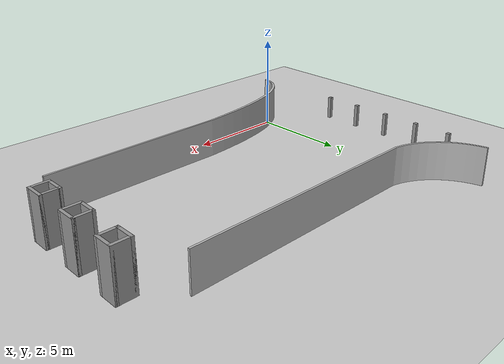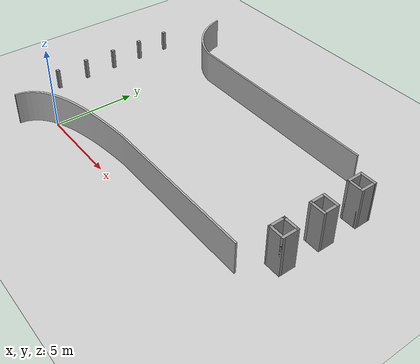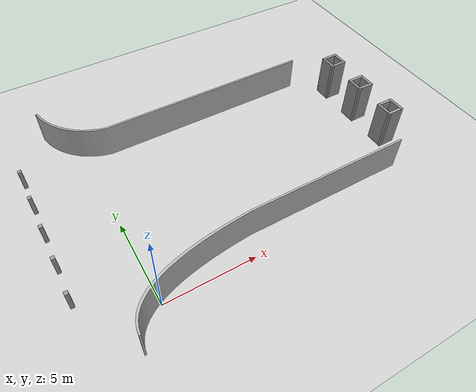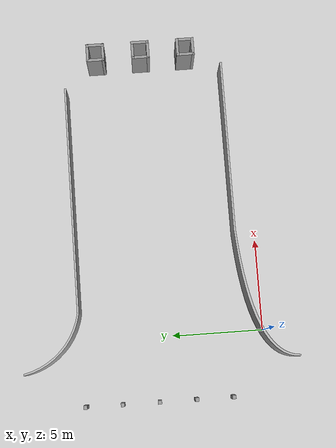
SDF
<sdf version="1.7">
 <world name="default">
  <light name="sun" type="directional">
   <pose>0 0 10 0 -0 0</pose>
   <diffuse>0.8 0.8 0.8 1</diffuse>
   <specular>0.2 0.2 0.2 1</specular>
   <attenuation>
    <range>1000</range>
    <constant>0.9</constant>
    <linear>0.01</linear>
    <quadratic>0.001</quadratic>
   </attenuation>
   <direction>-0.5 0.1 -0.9</direction>
   <spot><inner_angle>0</inner_angle><outer_angle>0</outer_angle><falloff>0</falloff></spot>
  </light>
  <model name="ground_plane">
   <static>1</static>
   <link name="link">
    <collision name="collision">
     <geometry><plane><normal>0 0 1</normal><size>100 100</size></plane></geometry>
     <surface>
      <contact><collide_bitmask>65535</collide_bitmask></contact>
      <friction><ode><mu>100</mu><mu2>50</mu2></ode></friction>
     </surface>
    </collision>
    <visual name="visual">
     <cast_shadows>0</cast_shadows>
     <geometry><plane><normal>0 0 1</normal><size>100 100</size></plane></geometry>
     <material>
      <script><uri>file://media/materials/scripts/gazebo.material</uri><name>Gazebo/Grey</name></script>
     </material>
    </visual>
   </link>
  </model>
  <gravity>0 0 -9.8</gravity>
  <magnetic_field>6e-06 2.3e-05 -4.2e-05</magnetic_field>
  <atmosphere type="adiabatic"/>
  <physics type="ode">
   <max_step_size>0.001</max_step_size>
   <real_time_factor>1</real_time_factor>
   <real_time_update_rate>1000</real_time_update_rate>
  </physics>
  <scene><ambient>0.4 0.4 0.4 1</ambient><background>0.7 0.7 0.7 1</background><shadows>1</shadows></scene>
  <spherical_coordinates>
   <surface_model>EARTH_WGS84</surface_model>
   <latitude_deg>0</latitude_deg>
   <longitude_deg>0</longitude_deg>
   <elevation>0</elevation>
   <heading_deg>0</heading_deg>
  </spherical_coordinates>
  <model name="mywall1">
   <static>1</static>
   <link name="link">
    <collision name="collision">
     <geometry><mesh><scale>0.01 0.01 0.01</scale><uri>model://mywall1/meshes/Pieza3.obj</uri></mesh></geometry>
    </collision>
    <visual name="visual">
     <geometry><mesh><scale>0.01 0.01 0.01</scale><uri>model://mywall1/meshes/Pieza3.obj</uri></mesh></geometry>
    </visual>
   </link>
   <pose>28.849 -8.5 0 1.57 -0 0</pose>
  </model>
  <model name="mywall2">
   <static>1</static>
   <link name="link">
    <collision name="collision">
     <geometry><mesh><scale>0.01 0.01 0.01</scale><uri>model://mywall2/meshes/Pieza2.obj</uri></mesh></geometry>
    </collision>
    <visual name="visual">
     <geometry><mesh><scale>0.01 0.01 0.01</scale><uri>model://mywall2/meshes/Pieza2.obj</uri></mesh></geometry>
    </visual>
   </link>
   <pose>1.5 10.0302 -0.000422 1.57 -0 0</pose>
  </model>
  <model name="wall3">
   <pose>16 4.75 0 0 -0 0</pose>
   <link name="Wall_0">
    <collision name="Wall_0_Collision">
     <geometry><box><size>1 0.15 2.5</size></box></geometry>
     <pose>0 0 1.25 0 -0 0</pose>
    </collision>
    <visual name="Wall_0_Visual">
     <pose>0 0 1.25 0 -0 0</pose>
     <geometry><box><size>1 0.15 2.5</size></box></geometry>
     <material>
      <script><uri>file://media/materials/scripts/gazebo.material</uri><name>Gazebo/Grey</name></script>
      <ambient>1 1 1 1</ambient>
     </material>
     <meta><layer>0</layer></meta>
    </visual>
    <pose>-0.1975 -1.0975 0 0 -0 0</pose>
   </link>
   <link name="Wall_1">
    <collision name="Wall_1_Collision">
     <geometry><box><size>1 0.15 2.5</size></box></geometry>
     <pose>0 0 1.25 0 -0 0</pose>
    </collision>
    <visual name="Wall_1_Visual">
     <pose>0 0 1.25 0 -0 0</pose>
     <geometry><box><size>1 0.15 2.5</size></box></geometry>
     <material>
      <script><uri>file://media/materials/scripts/gazebo.material</uri><name>Gazebo/Grey</name></script>
      <ambient>1 1 1 1</ambient>
     </material>
     <meta><layer>0</layer></meta>
    </visual>
    <pose>0.2275 -1.5225 0 0 -0 -1.5708</pose>
   </link>
   <link name="Wall_2">
    <collision name="Wall_2_Collision">
     <geometry><box><size>1 0.15 2.5</size></box></geometry>
     <pose>0 0 1.25 0 -0 0</pose>
    </collision>
    <visual name="Wall_2_Visual">
     <pose>0 0 1.25 0 -0 0</pose>
     <geometry><box><size>1 0.15 2.5</size></box></geometry>
     <material>
      <script><uri>file://media/materials/scripts/gazebo.material</uri><name>Gazebo/Grey</name></script>
      <ambient>1 1 1 1</ambient>
     </material>
     <meta><layer>0</layer></meta>
    </visual>
    <pose>-0.1975 -1.9475 0 0 -0 3.14159</pose>
   </link>
   <link name="Wall_3">
    <collision name="Wall_3_Collision">
     <geometry><box><size>1 0.15 2.5</size></box></geometry>
     <pose>0 0 1.25 0 -0 0</pose>
    </collision>
    <visual name="Wall_3_Visual">
     <pose>0 0 1.25 0 -0 0</pose>
     <geometry><box><size>1 0.15 2.5</size></box></geometry>
     <material>
      <script><uri>file://media/materials/scripts/gazebo.material</uri><name>Gazebo/Grey</name></script>
      <ambient>1 1 1 1</ambient>
     </material>
     <meta><layer>0</layer></meta>
    </visual>
    <pose>-0.6225 -1.5225 0 0 -0 1.5708</pose>
   </link>
   <static>1</static>
  </model>
  <model name="wall4">
   <pose>16 7.25 0 0 -0 0</pose>
   <link name="Wall_0">
    <collision name="Wall_0_Collision">
     <geometry><box><size>1 0.15 2.5</size></box></geometry>
     <pose>0 0 1.25 0 -0 0</pose>
    </collision>
    <visual name="Wall_0_Visual">
     <pose>0 0 1.25 0 -0 0</pose>
     <geometry><box><size>1 0.15 2.5</size></box></geometry>
     <material>
      <script><uri>file://media/materials/scripts/gazebo.material</uri><name>Gazebo/Grey</name></script>
      <ambient>1 1 1 1</ambient>
     </material>
     <meta><layer>0</layer></meta>
    </visual>
    <pose>-0.1975 -1.0975 0 0 -0 0</pose>
   </link>
   <link name="Wall_1">
    <collision name="Wall_1_Collision">
     <geometry><box><size>1 0.15 2.5</size></box></geometry>
     <pose>0 0 1.25 0 -0 0</pose>
    </collision>
    <visual name="Wall_1_Visual">
     <pose>0 0 1.25 0 -0 0</pose>
     <geometry><box><size>1 0.15 2.5</size></box></geometry>
     <material>
      <script><uri>file://media/materials/scripts/gazebo.material</uri><name>Gazebo/Grey</name></script>
      <ambient>1 1 1 1</ambient>
     </material>
     <meta><layer>0</layer></meta>
    </visual>
    <pose>0.2275 -1.5225 0 0 -0 -1.5708</pose>
   </link>
   <link name="Wall_2">
    <collision name="Wall_2_Collision">
     <geometry><box><size>1 0.15 2.5</size></box></geometry>
     <pose>0 0 1.25 0 -0 0</pose>
    </collision>
    <visual name="Wall_2_Visual">
     <pose>0 0 1.25 0 -0 0</pose>
     <geometry><box><size>1 0.15 2.5</size></box></geometry>
     <material>
      <script><uri>file://media/materials/scripts/gazebo.material</uri><name>Gazebo/Grey</name></script>
      <ambient>1 1 1 1</ambient>
     </material>
     <meta><layer>0</layer></meta>
    </visual>
    <pose>-0.1975 -1.9475 0 0 -0 3.14159</pose>
   </link>
   <link name="Wall_3">
    <collision name="Wall_3_Collision">
     <geometry><box><size>1 0.15 2.5</size></box></geometry>
     <pose>0 0 1.25 0 -0 0</pose>
    </collision>
    <visual name="Wall_3_Visual">
     <pose>0 0 1.25 0 -0 0</pose>
     <geometry><box><size>1 0.15 2.5</size></box></geometry>
     <material>
      <script><uri>file://media/materials/scripts/gazebo.material</uri><name>Gazebo/Grey</name></script>
      <ambient>1 1 1 1</ambient>
     </material>
     <meta><layer>0</layer></meta>
    </visual>
    <pose>-0.6225 -1.5225 0 0 -0 1.5708</pose>
   </link>
   <static>1</static>
  </model>
  <model name="wall5">
   <pose>16 9.75 0 0 -0 0</pose>
   <link name="Wall_0">
    <collision name="Wall_0_Collision">
     <geometry><box><size>1 0.15 2.5</size></box></geometry>
     <pose>0 0 1.25 0 -0 0</pose>
    </collision>
    <visual name="Wall_0_Visual">
     <pose>0 0 1.25 0 -0 0</pose>
     <geometry><box><size>1 0.15 2.5</size></box></geometry>
     <material>
      <script><uri>file://media/materials/scripts/gazebo.material</uri><name>Gazebo/Grey</name></script>
      <ambient>1 1 1 1</ambient>
     </material>
     <meta><layer>0</layer></meta>
    </visual>
    <pose>-0.1975 -1.0975 0 0 -0 0</pose>
   </link>
   <link name="Wall_1">
    <collision name="Wall_1_Collision">
     <geometry><box><size>1 0.15 2.5</size></box></geometry>
     <pose>0 0 1.25 0 -0 0</pose>
    </collision>
    <visual name="Wall_1_Visual">
     <pose>0 0 1.25 0 -0 0</pose>
     <geometry><box><size>1 0.15 2.5</size></box></geometry>
     <material>
      <script><uri>file://media/materials/scripts/gazebo.material</uri><name>Gazebo/Grey</name></script>
      <ambient>1 1 1 1</ambient>
     </material>
     <meta><layer>0</layer></meta>
    </visual>
    <pose>0.2275 -1.5225 0 0 -0 -1.5708</pose>
   </link>
   <link name="Wall_2">
    <collision name="Wall_2_Collision">
     <geometry><box><size>1 0.15 2.5</size></box></geometry>
     <pose>0 0 1.25 0 -0 0</pose>
    </collision>
    <visual name="Wall_2_Visual">
     <pose>0 0 1.25 0 -0 0</pose>
     <geometry><box><size>1 0.15 2.5</size></box></geometry>
     <material>
      <script><uri>file://media/materials/scripts/gazebo.material</uri><name>Gazebo/Grey</name></script>
      <ambient>1 1 1 1</ambient>
     </material>
     <meta><layer>0</layer></meta>
    </visual>
    <pose>-0.1975 -1.9475 0 0 -0 3.14159</pose>
   </link>
   <link name="Wall_3">
    <collision name="Wall_3_Collision">
     <geometry><box><size>1 0.15 2.5</size></box></geometry>
     <pose>0 0 1.25 0 -0 0</pose>
    </collision>
    <visual name="Wall_3_Visual">
     <pose>0 0 1.25 0 -0 0</pose>
     <geometry><box><size>1 0.15 2.5</size></box></geometry>
     <material>
      <script><uri>file://media/materials/scripts/gazebo.material</uri><name>Gazebo/Grey</name></script>
      <ambient>1 1 1 1</ambient>
     </material>
     <meta><layer>0</layer></meta>
    </visual>
    <pose>-0.6225 -1.5225 0 0 -0 1.5708</pose>
   </link>
   <static>1</static>
  </model>
  <model name="column1">
   <pose>-3.5 1.97 0 0 -0 0</pose>
   <link name="Wall_4">
    <collision name="Wall_4_Collision"><geometry><box><size>0.2 0.2 2.5</size></box></geometry></collision>
    <visual name="Wall_4_Visual">
     <geometry><box><size>0.2 0.2 2.5</size></box></geometry>
     <material>
      <script><uri>file://media/materials/scripts/gazebo.material</uri><name>Gazebo/Grey</name></script>
      <ambient>1 1 1 1</ambient>
     </material>
     <meta><layer>0</layer></meta>
    </visual>
   </link>
   <static>1</static>
  </model>
  <model name="column2">
   <pose>-3.5 3.97 0 0 -0 0</pose>
   <link name="Wall_4">
    <collision name="Wall_4_Collision"><geometry><box><size>0.2 0.2 2.5</size></box></geometry></collision>
    <visual name="Wall_4_Visual">
     <geometry><box><size>0.2 0.2 2.5</size></box></geometry>
     <material>
      <script><uri>file://media/materials/scripts/gazebo.material</uri><name>Gazebo/Grey</name></script>
      <ambient>1 1 1 1</ambient>
     </material>
     <meta><layer>0</layer></meta>
    </visual>
   </link>
   <static>1</static>
  </model>
  <model name="column3">
   <pose>-3.5 5.97 0 0 -0 0</pose>
   <link name="Wall_4">
    <collision name="Wall_4_Collision"><geometry><box><size>0.2 0.2 2.5</size></box></geometry></collision>
    <visual name="Wall_4_Visual">
     <geometry><box><size>0.2 0.2 2.5</size></box></geometry>
     <material>
      <script><uri>file://media/materials/scripts/gazebo.material</uri><name>Gazebo/Grey</name></script>
      <ambient>1 1 1 1</ambient>
     </material>
     <meta><layer>0</layer></meta>
    </visual>
   </link>
   <static>1</static>
  </model>
  <model name="column4">
   <pose>-3.5 7.97 0 0 -0 0</pose>
   <link name="Wall_4">
    <collision name="Wall_4_Collision"><geometry><box><size>0.2 0.2 2.5</size></box></geometry></collision>
    <visual name="Wall_4_Visual">
     <geometry><box><size>0.2 0.2 2.5</size></box></geometry>
     <material>
      <script><uri>file://media/materials/scripts/gazebo.material</uri><name>Gazebo/Grey</name></script>
      <ambient>1 1 1 1</ambient>
     </material>
     <meta><layer>0</layer></meta>
    </visual>
   </link>
   <static>1</static>
  </model>
  <model name="column5">
   <pose>-3.5 9.97 0 0 -0 0</pose>
   <link name="Wall_4">
    <collision name="Wall_4_Collision"><geometry><box><size>0.2 0.2 2.5</size></box></geometry></collision>
    <visual name="Wall_4_Visual">
     <geometry><box><size>0.2 0.2 2.5</size></box></geometry>
     <material>
      <script><uri>file://media/materials/scripts/gazebo.material</uri><name>Gazebo/Grey</name></script>
      <ambient>1 1 1 1</ambient>
     </material>
     <meta><layer>0</layer></meta>
    </visual>
   </link>
   <static>1</static>
  </model>
 </world>
</sdf>
